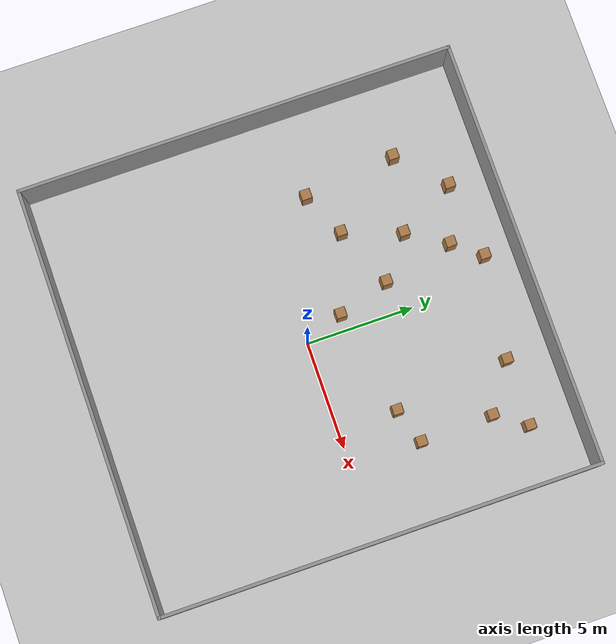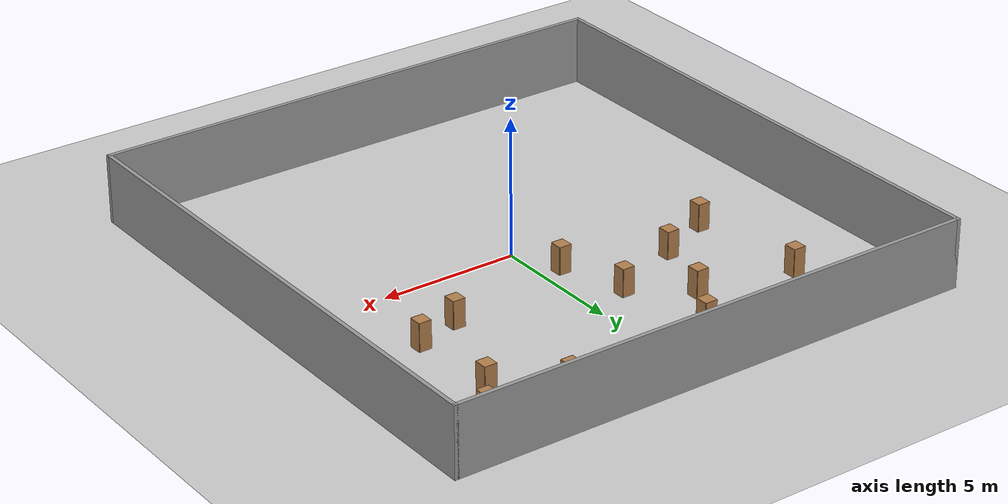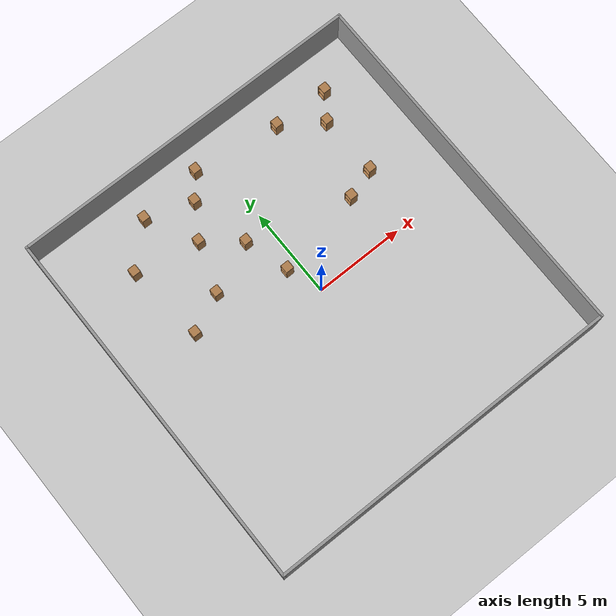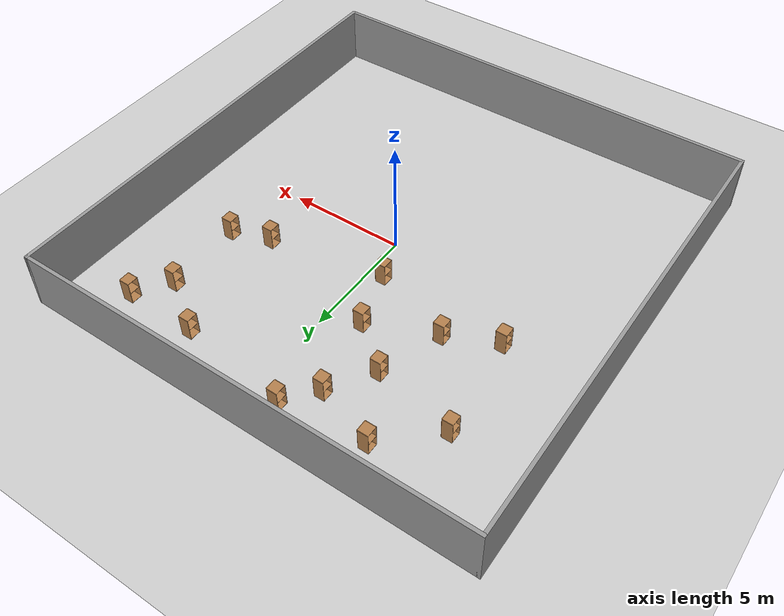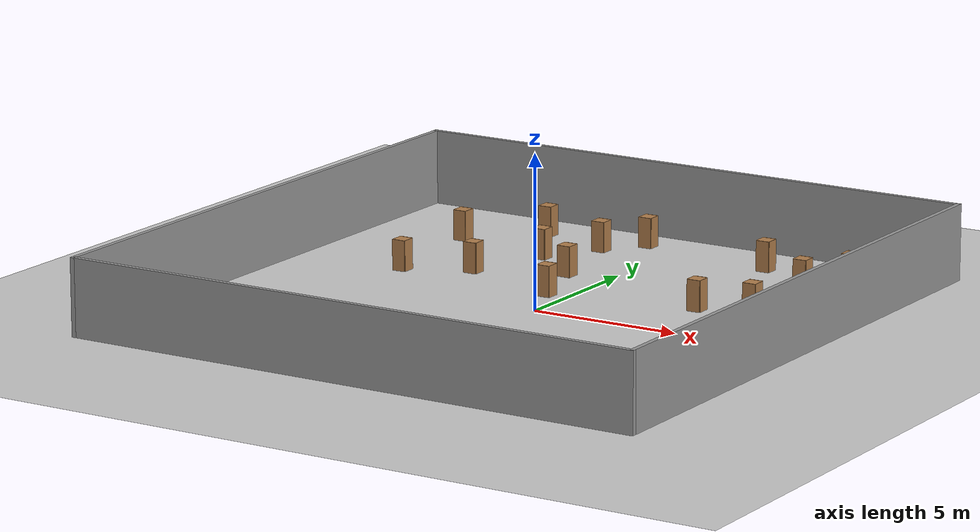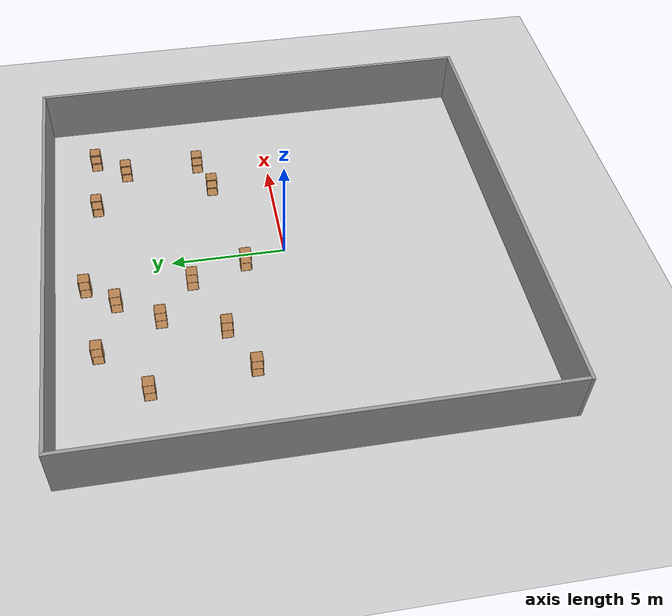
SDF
<sdf version="1.6">
 <world name="default">
  <model name="ground_plane">
   <static>1</static>
   <link name="link">
    <collision name="collision">
     <geometry><plane><normal>0 0 1</normal><size>100 100</size></plane></geometry>
     <surface><friction><ode><mu>100</mu><mu2>50</mu2></ode></friction></surface>
    </collision>
    <visual name="visual">
     <cast_shadows>0</cast_shadows>
     <geometry><plane><normal>0 0 1</normal><size>100 100</size></plane></geometry>
     <material>
      <script><uri>file://media/materials/scripts/gazebo.material</uri><name>Gazebo/Grey</name></script>
     </material>
    </visual>
   </link>
  </model>
  <model name="room">
   <pose>-0.435747 0.13788 0 0 -0 0</pose>
   <link name="Wall_0">
    <collision name="Wall_0_Collision">
     <geometry><box><size>19.75 0.15 2.5</size></box></geometry>
     <pose>0 0 1.25 0 -0 0</pose>
    </collision>
    <visual name="Wall_0_Visual">
     <pose>0 0 1.25 0 -0 0</pose>
     <geometry><box><size>19.75 0.15 2.5</size></box></geometry>
     <material>
      <script><uri>file://media/materials/scripts/gazebo.material</uri><name>Gazebo/Grey</name></script>
      <ambient>1 1 1 1</ambient>
     </material>
     <meta><layer>0</layer></meta>
    </visual>
    <pose>-0 -10.05 0 0 -0 3.14159</pose>
   </link>
   <link name="Wall_2">
    <collision name="Wall_2_Collision">
     <geometry><box><size>20.25 0.15 2.5</size></box></geometry>
     <pose>0 0 1.25 0 -0 0</pose>
    </collision>
    <visual name="Wall_2_Visual">
     <pose>0 0 1.25 0 -0 0</pose>
     <geometry><box><size>20.25 0.15 2.5</size></box></geometry>
     <material>
      <script><uri>file://media/materials/scripts/gazebo.material</uri><name>Gazebo/Grey</name></script>
      <ambient>1 1 1 1</ambient>
     </material>
     <meta><layer>0</layer></meta>
    </visual>
    <pose>-9.8 0 0 0 -0 1.5708</pose>
   </link>
   <link name="Wall_3">
    <collision name="Wall_3_Collision">
     <geometry><box><size>19.75 0.15 2.5</size></box></geometry>
     <pose>0 0 1.25 0 -0 0</pose>
    </collision>
    <visual name="Wall_3_Visual">
     <pose>0 0 1.25 0 -0 0</pose>
     <geometry><box><size>19.75 0.15 2.5</size></box></geometry>
     <material>
      <script><uri>file://media/materials/scripts/gazebo.material</uri><name>Gazebo/Grey</name></script>
      <ambient>1 1 1 1</ambient>
     </material>
     <meta><layer>0</layer></meta>
    </visual>
    <pose>-0 10.05 0 0 -0 0</pose>
   </link>
   <link name="Wall_4">
    <collision name="Wall_4_Collision">
     <geometry><box><size>20.25 0.15 2.5</size></box></geometry>
     <pose>0 0 1.25 0 -0 0</pose>
    </collision>
    <visual name="Wall_4_Visual">
     <pose>0 0 1.25 0 -0 0</pose>
     <geometry><box><size>20.25 0.15 2.5</size></box></geometry>
     <material>
      <script><uri>file://media/materials/scripts/gazebo.material</uri><name>Gazebo/Grey</name></script>
      <ambient>1 1 1 1</ambient>
     </material>
     <meta><layer>0</layer></meta>
    </visual>
    <pose>9.8 0 0 0 -0 -1.5708</pose>
   </link>
   <static>1</static>
  </model>
  <model name="cabinet">
   <static>1</static>
   <link name="cabinet_bottom_plate">
    <inertial>
     <pose>0 0 -1 0 -0 0</pose>
     <inertia><ixx>2.05</ixx><ixy>0</ixy><ixz>0</ixz><iyy>2.05</iyy><iyz>0</iyz><izz>2.05</izz></inertia>
     <mass>25</mass>
    </inertial>
    <collision name="cabinet_bottom_plate_geom">
     <pose>0 0 0.01 0 -0 0</pose>
     <geometry><box><size>0.45 0.45 0.02</size></box></geometry>
    </collision>
    <visual name="cabinet_bottom_plate_geom_visual">
     <pose>0 0 0.01 0 -0 0</pose>
     <geometry><box><size>0.45 0.45 0.02</size></box></geometry>
     <material>
      <script><uri>file://media/materials/scripts/gazebo.material</uri><name>Gazebo/Wood</name></script>
     </material>
    </visual>
    <collision name="cabinet_bottom_plate_geom_cabinet_back_plate">
     <pose>0.235 0 0.51 0 -0 0</pose>
     <geometry><box><size>0.02 0.45 1.02</size></box></geometry>
    </collision>
    <visual name="cabinet_bottom_plate_geom_cabinet_back_plate_visual">
     <pose>0.235 0 0.51 0 -0 0</pose>
     <geometry><box><size>0.02 0.45 1.02</size></box></geometry>
     <material>
      <script><uri>file://media/materials/scripts/gazebo.material</uri><name>Gazebo/Wood</name></script>
     </material>
    </visual>
    <collision name="cabinet_bottom_plate_geom_cabinet_left_plate">
     <pose>0 0.235 0.51 0 -0 0</pose>
     <geometry><box><size>0.45 0.02 1.02</size></box></geometry>
    </collision>
    <visual name="cabinet_bottom_plate_geom_cabinet_left_plate_visual">
     <pose>0 0.235 0.51 0 -0 0</pose>
     <geometry><box><size>0.45 0.02 1.02</size></box></geometry>
     <material>
      <script><uri>file://media/materials/scripts/gazebo.material</uri><name>Gazebo/Wood</name></script>
     </material>
    </visual>
    <collision name="cabinet_bottom_plate_geom_cabinet_middle_plate">
     <pose>0 0 0.51 0 -0 0</pose>
     <geometry><box><size>0.45 0.45 0.02</size></box></geometry>
    </collision>
    <visual name="cabinet_bottom_plate_geom_cabinet_middle_plate_visual">
     <pose>0 0 0.51 0 -0 0</pose>
     <geometry><box><size>0.45 0.45 0.02</size></box></geometry>
     <material>
      <script><uri>file://media/materials/scripts/gazebo.material</uri><name>Gazebo/Wood</name></script>
     </material>
    </visual>
    <collision name="cabinet_bottom_plate_geom_cabinet_right_plate">
     <pose>0 -0.235 0.51 0 -0 0</pose>
     <geometry><box><size>0.45 0.02 1.02</size></box></geometry>
    </collision>
    <visual name="cabinet_bottom_plate_geom_cabinet_right_plate_visual">
     <pose>0 -0.235 0.51 0 -0 0</pose>
     <geometry><box><size>0.45 0.02 1.02</size></box></geometry>
     <material>
      <script><uri>file://media/materials/scripts/gazebo.material</uri><name>Gazebo/Wood</name></script>
     </material>
    </visual>
    <collision name="cabinet_bottom_plate_geom_cabinet_top_plate">
     <pose>0 0 1.01 0 -0 0</pose>
     <geometry><box><size>0.45 0.45 0.02</size></box></geometry>
    </collision>
    <visual name="cabinet_bottom_plate_geom_cabinet_top_plate_visual">
     <pose>0 0 1.01 0 -0 0</pose>
     <geometry><box><size>0.45 0.45 0.02</size></box></geometry>
     <material>
      <script><uri>file://media/materials/scripts/gazebo.material</uri><name>Gazebo/Wood</name></script>
     </material>
    </visual>
   </link>
   <pose>6.71226 8.05087 0 0 -0 0</pose>
  </model>
  <model name="cabinet_0">
   <static>1</static>
   <link name="cabinet_bottom_plate">
    <inertial>
     <pose>0 0 -1 0 -0 0</pose>
     <inertia><ixx>2.05</ixx><ixy>0</ixy><ixz>0</ixz><iyy>2.05</iyy><iyz>0</iyz><izz>2.05</izz></inertia>
     <mass>25</mass>
    </inertial>
    <collision name="cabinet_bottom_plate_geom">
     <pose>0 0 0.01 0 -0 0</pose>
     <geometry><box><size>0.45 0.45 0.02</size></box></geometry>
    </collision>
    <visual name="cabinet_bottom_plate_geom_visual">
     <pose>0 0 0.01 0 -0 0</pose>
     <geometry><box><size>0.45 0.45 0.02</size></box></geometry>
     <material>
      <script><uri>file://media/materials/scripts/gazebo.material</uri><name>Gazebo/Wood</name></script>
     </material>
    </visual>
    <collision name="cabinet_bottom_plate_geom_cabinet_back_plate">
     <pose>0.235 0 0.51 0 -0 0</pose>
     <geometry><box><size>0.02 0.45 1.02</size></box></geometry>
    </collision>
    <visual name="cabinet_bottom_plate_geom_cabinet_back_plate_visual">
     <pose>0.235 0 0.51 0 -0 0</pose>
     <geometry><box><size>0.02 0.45 1.02</size></box></geometry>
     <material>
      <script><uri>file://media/materials/scripts/gazebo.material</uri><name>Gazebo/Wood</name></script>
     </material>
    </visual>
    <collision name="cabinet_bottom_plate_geom_cabinet_left_plate">
     <pose>0 0.235 0.51 0 -0 0</pose>
     <geometry><box><size>0.45 0.02 1.02</size></box></geometry>
    </collision>
    <visual name="cabinet_bottom_plate_geom_cabinet_left_plate_visual">
     <pose>0 0.235 0.51 0 -0 0</pose>
     <geometry><box><size>0.45 0.02 1.02</size></box></geometry>
     <material>
      <script><uri>file://media/materials/scripts/gazebo.material</uri><name>Gazebo/Wood</name></script>
     </material>
    </visual>
    <collision name="cabinet_bottom_plate_geom_cabinet_middle_plate">
     <pose>0 0 0.51 0 -0 0</pose>
     <geometry><box><size>0.45 0.45 0.02</size></box></geometry>
    </collision>
    <visual name="cabinet_bottom_plate_geom_cabinet_middle_plate_visual">
     <pose>0 0 0.51 0 -0 0</pose>
     <geometry><box><size>0.45 0.45 0.02</size></box></geometry>
     <material>
      <script><uri>file://media/materials/scripts/gazebo.material</uri><name>Gazebo/Wood</name></script>
     </material>
    </visual>
    <collision name="cabinet_bottom_plate_geom_cabinet_right_plate">
     <pose>0 -0.235 0.51 0 -0 0</pose>
     <geometry><box><size>0.45 0.02 1.02</size></box></geometry>
    </collision>
    <visual name="cabinet_bottom_plate_geom_cabinet_right_plate_visual">
     <pose>0 -0.235 0.51 0 -0 0</pose>
     <geometry><box><size>0.45 0.02 1.02</size></box></geometry>
     <material>
      <script><uri>file://media/materials/scripts/gazebo.material</uri><name>Gazebo/Wood</name></script>
     </material>
    </visual>
    <collision name="cabinet_bottom_plate_geom_cabinet_top_plate">
     <pose>0 0 1.01 0 -0 0</pose>
     <geometry><box><size>0.45 0.45 0.02</size></box></geometry>
    </collision>
    <visual name="cabinet_bottom_plate_geom_cabinet_top_plate_visual">
     <pose>0 0 1.01 0 -0 0</pose>
     <geometry><box><size>0.45 0.45 0.02</size></box></geometry>
     <material>
      <script><uri>file://media/materials/scripts/gazebo.material</uri><name>Gazebo/Wood</name></script>
     </material>
    </visual>
   </link>
   <pose>5.74581 6.66166 0 0 -0 0</pose>
  </model>
  <model name="cabinet_1">
   <static>1</static>
   <link name="cabinet_bottom_plate">
    <inertial>
     <pose>0 0 -1 0 -0 0</pose>
     <inertia><ixx>2.05</ixx><ixy>0</ixy><ixz>0</ixz><iyy>2.05</iyy><iyz>0</iyz><izz>2.05</izz></inertia>
     <mass>25</mass>
    </inertial>
    <collision name="cabinet_bottom_plate_geom">
     <pose>0 0 0.01 0 -0 0</pose>
     <geometry><box><size>0.45 0.45 0.02</size></box></geometry>
    </collision>
    <visual name="cabinet_bottom_plate_geom_visual">
     <pose>0 0 0.01 0 -0 0</pose>
     <geometry><box><size>0.45 0.45 0.02</size></box></geometry>
     <material>
      <script><uri>file://media/materials/scripts/gazebo.material</uri><name>Gazebo/Wood</name></script>
     </material>
    </visual>
    <collision name="cabinet_bottom_plate_geom_cabinet_back_plate">
     <pose>0.235 0 0.51 0 -0 0</pose>
     <geometry><box><size>0.02 0.45 1.02</size></box></geometry>
    </collision>
    <visual name="cabinet_bottom_plate_geom_cabinet_back_plate_visual">
     <pose>0.235 0 0.51 0 -0 0</pose>
     <geometry><box><size>0.02 0.45 1.02</size></box></geometry>
     <material>
      <script><uri>file://media/materials/scripts/gazebo.material</uri><name>Gazebo/Wood</name></script>
     </material>
    </visual>
    <collision name="cabinet_bottom_plate_geom_cabinet_left_plate">
     <pose>0 0.235 0.51 0 -0 0</pose>
     <geometry><box><size>0.45 0.02 1.02</size></box></geometry>
    </collision>
    <visual name="cabinet_bottom_plate_geom_cabinet_left_plate_visual">
     <pose>0 0.235 0.51 0 -0 0</pose>
     <geometry><box><size>0.45 0.02 1.02</size></box></geometry>
     <material>
      <script><uri>file://media/materials/scripts/gazebo.material</uri><name>Gazebo/Wood</name></script>
     </material>
    </visual>
    <collision name="cabinet_bottom_plate_geom_cabinet_middle_plate">
     <pose>0 0 0.51 0 -0 0</pose>
     <geometry><box><size>0.45 0.45 0.02</size></box></geometry>
    </collision>
    <visual name="cabinet_bottom_plate_geom_cabinet_middle_plate_visual">
     <pose>0 0 0.51 0 -0 0</pose>
     <geometry><box><size>0.45 0.45 0.02</size></box></geometry>
     <material>
      <script><uri>file://media/materials/scripts/gazebo.material</uri><name>Gazebo/Wood</name></script>
     </material>
    </visual>
    <collision name="cabinet_bottom_plate_geom_cabinet_right_plate">
     <pose>0 -0.235 0.51 0 -0 0</pose>
     <geometry><box><size>0.45 0.02 1.02</size></box></geometry>
    </collision>
    <visual name="cabinet_bottom_plate_geom_cabinet_right_plate_visual">
     <pose>0 -0.235 0.51 0 -0 0</pose>
     <geometry><box><size>0.45 0.02 1.02</size></box></geometry>
     <material>
      <script><uri>file://media/materials/scripts/gazebo.material</uri><name>Gazebo/Wood</name></script>
     </material>
    </visual>
    <collision name="cabinet_bottom_plate_geom_cabinet_top_plate">
     <pose>0 0 1.01 0 -0 0</pose>
     <geometry><box><size>0.45 0.45 0.02</size></box></geometry>
    </collision>
    <visual name="cabinet_bottom_plate_geom_cabinet_top_plate_visual">
     <pose>0 0 1.01 0 -0 0</pose>
     <geometry><box><size>0.45 0.45 0.02</size></box></geometry>
     <material>
      <script><uri>file://media/materials/scripts/gazebo.material</uri><name>Gazebo/Wood</name></script>
     </material>
    </visual>
   </link>
   <pose>3.61983 8.1036 0 0 -0 0</pose>
  </model>
  <model name="cabinet_2">
   <static>1</static>
   <link name="cabinet_bottom_plate">
    <inertial>
     <pose>0 0 -1 0 -0 0</pose>
     <inertia><ixx>2.05</ixx><ixy>0</ixy><ixz>0</ixz><iyy>2.05</iyy><iyz>0</iyz><izz>2.05</izz></inertia>
     <mass>25</mass>
    </inertial>
    <collision name="cabinet_bottom_plate_geom">
     <pose>0 0 0.01 0 -0 0</pose>
     <geometry><box><size>0.45 0.45 0.02</size></box></geometry>
    </collision>
    <visual name="cabinet_bottom_plate_geom_visual">
     <pose>0 0 0.01 0 -0 0</pose>
     <geometry><box><size>0.45 0.45 0.02</size></box></geometry>
     <material>
      <script><uri>file://media/materials/scripts/gazebo.material</uri><name>Gazebo/Wood</name></script>
     </material>
    </visual>
    <collision name="cabinet_bottom_plate_geom_cabinet_back_plate">
     <pose>0.235 0 0.51 0 -0 0</pose>
     <geometry><box><size>0.02 0.45 1.02</size></box></geometry>
    </collision>
    <visual name="cabinet_bottom_plate_geom_cabinet_back_plate_visual">
     <pose>0.235 0 0.51 0 -0 0</pose>
     <geometry><box><size>0.02 0.45 1.02</size></box></geometry>
     <material>
      <script><uri>file://media/materials/scripts/gazebo.material</uri><name>Gazebo/Wood</name></script>
     </material>
    </visual>
    <collision name="cabinet_bottom_plate_geom_cabinet_left_plate">
     <pose>0 0.235 0.51 0 -0 0</pose>
     <geometry><box><size>0.45 0.02 1.02</size></box></geometry>
    </collision>
    <visual name="cabinet_bottom_plate_geom_cabinet_left_plate_visual">
     <pose>0 0.235 0.51 0 -0 0</pose>
     <geometry><box><size>0.45 0.02 1.02</size></box></geometry>
     <material>
      <script><uri>file://media/materials/scripts/gazebo.material</uri><name>Gazebo/Wood</name></script>
     </material>
    </visual>
    <collision name="cabinet_bottom_plate_geom_cabinet_middle_plate">
     <pose>0 0 0.51 0 -0 0</pose>
     <geometry><box><size>0.45 0.45 0.02</size></box></geometry>
    </collision>
    <visual name="cabinet_bottom_plate_geom_cabinet_middle_plate_visual">
     <pose>0 0 0.51 0 -0 0</pose>
     <geometry><box><size>0.45 0.45 0.02</size></box></geometry>
     <material>
      <script><uri>file://media/materials/scripts/gazebo.material</uri><name>Gazebo/Wood</name></script>
     </material>
    </visual>
    <collision name="cabinet_bottom_plate_geom_cabinet_right_plate">
     <pose>0 -0.235 0.51 0 -0 0</pose>
     <geometry><box><size>0.45 0.02 1.02</size></box></geometry>
    </collision>
    <visual name="cabinet_bottom_plate_geom_cabinet_right_plate_visual">
     <pose>0 -0.235 0.51 0 -0 0</pose>
     <geometry><box><size>0.45 0.02 1.02</size></box></geometry>
     <material>
      <script><uri>file://media/materials/scripts/gazebo.material</uri><name>Gazebo/Wood</name></script>
     </material>
    </visual>
    <collision name="cabinet_bottom_plate_geom_cabinet_top_plate">
     <pose>0 0 1.01 0 -0 0</pose>
     <geometry><box><size>0.45 0.45 0.02</size></box></geometry>
    </collision>
    <visual name="cabinet_bottom_plate_geom_cabinet_top_plate_visual">
     <pose>0 0 1.01 0 -0 0</pose>
     <geometry><box><size>0.45 0.45 0.02</size></box></geometry>
     <material>
      <script><uri>file://media/materials/scripts/gazebo.material</uri><name>Gazebo/Wood</name></script>
     </material>
    </visual>
   </link>
   <pose>5.83049 3.29027 0 0 -0 0</pose>
  </model>
  <model name="cabinet_7">
   <static>1</static>
   <link name="cabinet_bottom_plate">
    <inertial>
     <pose>0 0 -1 0 -0 0</pose>
     <inertia><ixx>2.05</ixx><ixy>0</ixy><ixz>0</ixz><iyy>2.05</iyy><iyz>0</iyz><izz>2.05</izz></inertia>
     <mass>25</mass>
    </inertial>
    <collision name="cabinet_bottom_plate_geom">
     <pose>0 0 0.01 0 -0 0</pose>
     <geometry><box><size>0.45 0.45 0.02</size></box></geometry>
    </collision>
    <visual name="cabinet_bottom_plate_geom_visual">
     <pose>0 0 0.01 0 -0 0</pose>
     <geometry><box><size>0.45 0.45 0.02</size></box></geometry>
     <material>
      <script><uri>file://media/materials/scripts/gazebo.material</uri><name>Gazebo/Wood</name></script>
     </material>
    </visual>
    <collision name="cabinet_bottom_plate_geom_cabinet_back_plate">
     <pose>0.235 0 0.51 0 -0 0</pose>
     <geometry><box><size>0.02 0.45 1.02</size></box></geometry>
    </collision>
    <visual name="cabinet_bottom_plate_geom_cabinet_back_plate_visual">
     <pose>0.235 0 0.51 0 -0 0</pose>
     <geometry><box><size>0.02 0.45 1.02</size></box></geometry>
     <material>
      <script><uri>file://media/materials/scripts/gazebo.material</uri><name>Gazebo/Wood</name></script>
     </material>
    </visual>
    <collision name="cabinet_bottom_plate_geom_cabinet_left_plate">
     <pose>0 0.235 0.51 0 -0 0</pose>
     <geometry><box><size>0.45 0.02 1.02</size></box></geometry>
    </collision>
    <visual name="cabinet_bottom_plate_geom_cabinet_left_plate_visual">
     <pose>0 0.235 0.51 0 -0 0</pose>
     <geometry><box><size>0.45 0.02 1.02</size></box></geometry>
     <material>
      <script><uri>file://media/materials/scripts/gazebo.material</uri><name>Gazebo/Wood</name></script>
     </material>
    </visual>
    <collision name="cabinet_bottom_plate_geom_cabinet_middle_plate">
     <pose>0 0 0.51 0 -0 0</pose>
     <geometry><box><size>0.45 0.45 0.02</size></box></geometry>
    </collision>
    <visual name="cabinet_bottom_plate_geom_cabinet_middle_plate_visual">
     <pose>0 0 0.51 0 -0 0</pose>
     <geometry><box><size>0.45 0.45 0.02</size></box></geometry>
     <material>
      <script><uri>file://media/materials/scripts/gazebo.material</uri><name>Gazebo/Wood</name></script>
     </material>
    </visual>
    <collision name="cabinet_bottom_plate_geom_cabinet_right_plate">
     <pose>0 -0.235 0.51 0 -0 0</pose>
     <geometry><box><size>0.45 0.02 1.02</size></box></geometry>
    </collision>
    <visual name="cabinet_bottom_plate_geom_cabinet_right_plate_visual">
     <pose>0 -0.235 0.51 0 -0 0</pose>
     <geometry><box><size>0.45 0.02 1.02</size></box></geometry>
     <material>
      <script><uri>file://media/materials/scripts/gazebo.material</uri><name>Gazebo/Wood</name></script>
     </material>
    </visual>
    <collision name="cabinet_bottom_plate_geom_cabinet_top_plate">
     <pose>0 0 1.01 0 -0 0</pose>
     <geometry><box><size>0.45 0.45 0.02</size></box></geometry>
    </collision>
    <visual name="cabinet_bottom_plate_geom_cabinet_top_plate_visual">
     <pose>0 0 1.01 0 -0 0</pose>
     <geometry><box><size>0.45 0.45 0.02</size></box></geometry>
     <material>
      <script><uri>file://media/materials/scripts/gazebo.material</uri><name>Gazebo/Wood</name></script>
     </material>
    </visual>
   </link>
   <pose>4.17053 2.75304 0 0 -0 0</pose>
  </model>
  <model name="cabinet_9">
   <static>1</static>
   <link name="cabinet_bottom_plate">
    <inertial>
     <pose>0 0 -1 0 -0 0</pose>
     <inertia><ixx>2.05</ixx><ixy>0</ixy><ixz>0</ixz><iyy>2.05</iyy><iyz>0</iyz><izz>2.05</izz></inertia>
     <mass>25</mass>
    </inertial>
    <collision name="cabinet_bottom_plate_geom">
     <pose>0 0 0.01 0 -0 0</pose>
     <geometry><box><size>0.45 0.45 0.02</size></box></geometry>
    </collision>
    <visual name="cabinet_bottom_plate_geom_visual">
     <pose>0 0 0.01 0 -0 0</pose>
     <geometry><box><size>0.45 0.45 0.02</size></box></geometry>
     <material>
      <script><uri>file://media/materials/scripts/gazebo.material</uri><name>Gazebo/Wood</name></script>
     </material>
    </visual>
    <collision name="cabinet_bottom_plate_geom_cabinet_back_plate">
     <pose>0.235 0 0.51 0 -0 0</pose>
     <geometry><box><size>0.02 0.45 1.02</size></box></geometry>
    </collision>
    <visual name="cabinet_bottom_plate_geom_cabinet_back_plate_visual">
     <pose>0.235 0 0.51 0 -0 0</pose>
     <geometry><box><size>0.02 0.45 1.02</size></box></geometry>
     <material>
      <script><uri>file://media/materials/scripts/gazebo.material</uri><name>Gazebo/Wood</name></script>
     </material>
    </visual>
    <collision name="cabinet_bottom_plate_geom_cabinet_left_plate">
     <pose>0 0.235 0.51 0 -0 0</pose>
     <geometry><box><size>0.45 0.02 1.02</size></box></geometry>
    </collision>
    <visual name="cabinet_bottom_plate_geom_cabinet_left_plate_visual">
     <pose>0 0.235 0.51 0 -0 0</pose>
     <geometry><box><size>0.45 0.02 1.02</size></box></geometry>
     <material>
      <script><uri>file://media/materials/scripts/gazebo.material</uri><name>Gazebo/Wood</name></script>
     </material>
    </visual>
    <collision name="cabinet_bottom_plate_geom_cabinet_middle_plate">
     <pose>0 0 0.51 0 -0 0</pose>
     <geometry><box><size>0.45 0.45 0.02</size></box></geometry>
    </collision>
    <visual name="cabinet_bottom_plate_geom_cabinet_middle_plate_visual">
     <pose>0 0 0.51 0 -0 0</pose>
     <geometry><box><size>0.45 0.45 0.02</size></box></geometry>
     <material>
      <script><uri>file://media/materials/scripts/gazebo.material</uri><name>Gazebo/Wood</name></script>
     </material>
    </visual>
    <collision name="cabinet_bottom_plate_geom_cabinet_right_plate">
     <pose>0 -0.235 0.51 0 -0 0</pose>
     <geometry><box><size>0.45 0.02 1.02</size></box></geometry>
    </collision>
    <visual name="cabinet_bottom_plate_geom_cabinet_right_plate_visual">
     <pose>0 -0.235 0.51 0 -0 0</pose>
     <geometry><box><size>0.45 0.02 1.02</size></box></geometry>
     <material>
      <script><uri>file://media/materials/scripts/gazebo.material</uri><name>Gazebo/Wood</name></script>
     </material>
    </visual>
    <collision name="cabinet_bottom_plate_geom_cabinet_top_plate">
     <pose>0 0 1.01 0 -0 0</pose>
     <geometry><box><size>0.45 0.45 0.02</size></box></geometry>
    </collision>
    <visual name="cabinet_bottom_plate_geom_cabinet_top_plate_visual">
     <pose>0 0 1.01 0 -0 0</pose>
     <geometry><box><size>0.45 0.45 0.02</size></box></geometry>
     <material>
      <script><uri>file://media/materials/scripts/gazebo.material</uri><name>Gazebo/Wood</name></script>
     </material>
    </visual>
   </link>
   <pose>-1.12707 8.77513 0 0 -0 0</pose>
  </model>
  <model name="cabinet_10">
   <static>1</static>
   <link name="cabinet_bottom_plate">
    <inertial>
     <pose>0 0 -1 0 -0 0</pose>
     <inertia><ixx>2.05</ixx><ixy>0</ixy><ixz>0</ixz><iyy>2.05</iyy><iyz>0</iyz><izz>2.05</izz></inertia>
     <mass>25</mass>
    </inertial>
    <collision name="cabinet_bottom_plate_geom">
     <pose>0 0 0.01 0 -0 0</pose>
     <geometry><box><size>0.45 0.45 0.02</size></box></geometry>
    </collision>
    <visual name="cabinet_bottom_plate_geom_visual">
     <pose>0 0 0.01 0 -0 0</pose>
     <geometry><box><size>0.45 0.45 0.02</size></box></geometry>
     <material>
      <script><uri>file://media/materials/scripts/gazebo.material</uri><name>Gazebo/Wood</name></script>
     </material>
    </visual>
    <collision name="cabinet_bottom_plate_geom_cabinet_back_plate">
     <pose>0.235 0 0.51 0 -0 0</pose>
     <geometry><box><size>0.02 0.45 1.02</size></box></geometry>
    </collision>
    <visual name="cabinet_bottom_plate_geom_cabinet_back_plate_visual">
     <pose>0.235 0 0.51 0 -0 0</pose>
     <geometry><box><size>0.02 0.45 1.02</size></box></geometry>
     <material>
      <script><uri>file://media/materials/scripts/gazebo.material</uri><name>Gazebo/Wood</name></script>
     </material>
    </visual>
    <collision name="cabinet_bottom_plate_geom_cabinet_left_plate">
     <pose>0 0.235 0.51 0 -0 0</pose>
     <geometry><box><size>0.45 0.02 1.02</size></box></geometry>
    </collision>
    <visual name="cabinet_bottom_plate_geom_cabinet_left_plate_visual">
     <pose>0 0.235 0.51 0 -0 0</pose>
     <geometry><box><size>0.45 0.02 1.02</size></box></geometry>
     <material>
      <script><uri>file://media/materials/scripts/gazebo.material</uri><name>Gazebo/Wood</name></script>
     </material>
    </visual>
    <collision name="cabinet_bottom_plate_geom_cabinet_middle_plate">
     <pose>0 0 0.51 0 -0 0</pose>
     <geometry><box><size>0.45 0.45 0.02</size></box></geometry>
    </collision>
    <visual name="cabinet_bottom_plate_geom_cabinet_middle_plate_visual">
     <pose>0 0 0.51 0 -0 0</pose>
     <geometry><box><size>0.45 0.45 0.02</size></box></geometry>
     <material>
      <script><uri>file://media/materials/scripts/gazebo.material</uri><name>Gazebo/Wood</name></script>
     </material>
    </visual>
    <collision name="cabinet_bottom_plate_geom_cabinet_right_plate">
     <pose>0 -0.235 0.51 0 -0 0</pose>
     <geometry><box><size>0.45 0.02 1.02</size></box></geometry>
    </collision>
    <visual name="cabinet_bottom_plate_geom_cabinet_right_plate_visual">
     <pose>0 -0.235 0.51 0 -0 0</pose>
     <geometry><box><size>0.45 0.02 1.02</size></box></geometry>
     <material>
      <script><uri>file://media/materials/scripts/gazebo.material</uri><name>Gazebo/Wood</name></script>
     </material>
    </visual>
    <collision name="cabinet_bottom_plate_geom_cabinet_top_plate">
     <pose>0 0 1.01 0 -0 0</pose>
     <geometry><box><size>0.45 0.45 0.02</size></box></geometry>
    </collision>
    <visual name="cabinet_bottom_plate_geom_cabinet_top_plate_visual">
     <pose>0 0 1.01 0 -0 0</pose>
     <geometry><box><size>0.45 0.45 0.02</size></box></geometry>
     <material>
      <script><uri>file://media/materials/scripts/gazebo.material</uri><name>Gazebo/Wood</name></script>
     </material>
    </visual>
   </link>
   <pose>-2.14834 7.51107 0 0 -0 0</pose>
  </model>
  <model name="cabinet_11">
   <static>1</static>
   <link name="cabinet_bottom_plate">
    <inertial>
     <pose>0 0 -1 0 -0 0</pose>
     <inertia><ixx>2.05</ixx><ixy>0</ixy><ixz>0</ixz><iyy>2.05</iyy><iyz>0</iyz><izz>2.05</izz></inertia>
     <mass>25</mass>
    </inertial>
    <collision name="cabinet_bottom_plate_geom">
     <pose>0 0 0.01 0 -0 0</pose>
     <geometry><box><size>0.45 0.45 0.02</size></box></geometry>
    </collision>
    <visual name="cabinet_bottom_plate_geom_visual">
     <pose>0 0 0.01 0 -0 0</pose>
     <geometry><box><size>0.45 0.45 0.02</size></box></geometry>
     <material>
      <script><uri>file://media/materials/scripts/gazebo.material</uri><name>Gazebo/Wood</name></script>
     </material>
    </visual>
    <collision name="cabinet_bottom_plate_geom_cabinet_back_plate">
     <pose>0.235 0 0.51 0 -0 0</pose>
     <geometry><box><size>0.02 0.45 1.02</size></box></geometry>
    </collision>
    <visual name="cabinet_bottom_plate_geom_cabinet_back_plate_visual">
     <pose>0.235 0 0.51 0 -0 0</pose>
     <geometry><box><size>0.02 0.45 1.02</size></box></geometry>
     <material>
      <script><uri>file://media/materials/scripts/gazebo.material</uri><name>Gazebo/Wood</name></script>
     </material>
    </visual>
    <collision name="cabinet_bottom_plate_geom_cabinet_left_plate">
     <pose>0 0.235 0.51 0 -0 0</pose>
     <geometry><box><size>0.45 0.02 1.02</size></box></geometry>
    </collision>
    <visual name="cabinet_bottom_plate_geom_cabinet_left_plate_visual">
     <pose>0 0.235 0.51 0 -0 0</pose>
     <geometry><box><size>0.45 0.02 1.02</size></box></geometry>
     <material>
      <script><uri>file://media/materials/scripts/gazebo.material</uri><name>Gazebo/Wood</name></script>
     </material>
    </visual>
    <collision name="cabinet_bottom_plate_geom_cabinet_middle_plate">
     <pose>0 0 0.51 0 -0 0</pose>
     <geometry><box><size>0.45 0.45 0.02</size></box></geometry>
    </collision>
    <visual name="cabinet_bottom_plate_geom_cabinet_middle_plate_visual">
     <pose>0 0 0.51 0 -0 0</pose>
     <geometry><box><size>0.45 0.45 0.02</size></box></geometry>
     <material>
      <script><uri>file://media/materials/scripts/gazebo.material</uri><name>Gazebo/Wood</name></script>
     </material>
    </visual>
    <collision name="cabinet_bottom_plate_geom_cabinet_right_plate">
     <pose>0 -0.235 0.51 0 -0 0</pose>
     <geometry><box><size>0.45 0.02 1.02</size></box></geometry>
    </collision>
    <visual name="cabinet_bottom_plate_geom_cabinet_right_plate_visual">
     <pose>0 -0.235 0.51 0 -0 0</pose>
     <geometry><box><size>0.45 0.02 1.02</size></box></geometry>
     <material>
      <script><uri>file://media/materials/scripts/gazebo.material</uri><name>Gazebo/Wood</name></script>
     </material>
    </visual>
    <collision name="cabinet_bottom_plate_geom_cabinet_top_plate">
     <pose>0 0 1.01 0 -0 0</pose>
     <geometry><box><size>0.45 0.45 0.02</size></box></geometry>
    </collision>
    <visual name="cabinet_bottom_plate_geom_cabinet_top_plate_visual">
     <pose>0 0 1.01 0 -0 0</pose>
     <geometry><box><size>0.45 0.45 0.02</size></box></geometry>
     <material>
      <script><uri>file://media/materials/scripts/gazebo.material</uri><name>Gazebo/Wood</name></script>
     </material>
    </visual>
   </link>
   <pose>-3.28339 5.70512 0 0 -0 0</pose>
  </model>
  <model name="cabinet_12">
   <static>1</static>
   <link name="cabinet_bottom_plate">
    <inertial>
     <pose>0 0 -1 0 -0 0</pose>
     <inertia><ixx>2.05</ixx><ixy>0</ixy><ixz>0</ixz><iyy>2.05</iyy><iyz>0</iyz><izz>2.05</izz></inertia>
     <mass>25</mass>
    </inertial>
    <collision name="cabinet_bottom_plate_geom">
     <pose>0 0 0.01 0 -0 0</pose>
     <geometry><box><size>0.45 0.45 0.02</size></box></geometry>
    </collision>
    <visual name="cabinet_bottom_plate_geom_visual">
     <pose>0 0 0.01 0 -0 0</pose>
     <geometry><box><size>0.45 0.45 0.02</size></box></geometry>
     <material>
      <script><uri>file://media/materials/scripts/gazebo.material</uri><name>Gazebo/Wood</name></script>
     </material>
    </visual>
    <collision name="cabinet_bottom_plate_geom_cabinet_back_plate">
     <pose>0.235 0 0.51 0 -0 0</pose>
     <geometry><box><size>0.02 0.45 1.02</size></box></geometry>
    </collision>
    <visual name="cabinet_bottom_plate_geom_cabinet_back_plate_visual">
     <pose>0.235 0 0.51 0 -0 0</pose>
     <geometry><box><size>0.02 0.45 1.02</size></box></geometry>
     <material>
      <script><uri>file://media/materials/scripts/gazebo.material</uri><name>Gazebo/Wood</name></script>
     </material>
    </visual>
    <collision name="cabinet_bottom_plate_geom_cabinet_left_plate">
     <pose>0 0.235 0.51 0 -0 0</pose>
     <geometry><box><size>0.45 0.02 1.02</size></box></geometry>
    </collision>
    <visual name="cabinet_bottom_plate_geom_cabinet_left_plate_visual">
     <pose>0 0.235 0.51 0 -0 0</pose>
     <geometry><box><size>0.45 0.02 1.02</size></box></geometry>
     <material>
      <script><uri>file://media/materials/scripts/gazebo.material</uri><name>Gazebo/Wood</name></script>
     </material>
    </visual>
    <collision name="cabinet_bottom_plate_geom_cabinet_middle_plate">
     <pose>0 0 0.51 0 -0 0</pose>
     <geometry><box><size>0.45 0.45 0.02</size></box></geometry>
    </collision>
    <visual name="cabinet_bottom_plate_geom_cabinet_middle_plate_visual">
     <pose>0 0 0.51 0 -0 0</pose>
     <geometry><box><size>0.45 0.45 0.02</size></box></geometry>
     <material>
      <script><uri>file://media/materials/scripts/gazebo.material</uri><name>Gazebo/Wood</name></script>
     </material>
    </visual>
    <collision name="cabinet_bottom_plate_geom_cabinet_right_plate">
     <pose>0 -0.235 0.51 0 -0 0</pose>
     <geometry><box><size>0.45 0.02 1.02</size></box></geometry>
    </collision>
    <visual name="cabinet_bottom_plate_geom_cabinet_right_plate_visual">
     <pose>0 -0.235 0.51 0 -0 0</pose>
     <geometry><box><size>0.45 0.02 1.02</size></box></geometry>
     <material>
      <script><uri>file://media/materials/scripts/gazebo.material</uri><name>Gazebo/Wood</name></script>
     </material>
    </visual>
    <collision name="cabinet_bottom_plate_geom_cabinet_top_plate">
     <pose>0 0 1.01 0 -0 0</pose>
     <geometry><box><size>0.45 0.45 0.02</size></box></geometry>
    </collision>
    <visual name="cabinet_bottom_plate_geom_cabinet_top_plate_visual">
     <pose>0 0 1.01 0 -0 0</pose>
     <geometry><box><size>0.45 0.45 0.02</size></box></geometry>
     <material>
      <script><uri>file://media/materials/scripts/gazebo.material</uri><name>Gazebo/Wood</name></script>
     </material>
    </visual>
   </link>
   <pose>-1.43679 4.22181 0 0 -0 0</pose>
  </model>
  <model name="cabinet_13">
   <static>1</static>
   <link name="cabinet_bottom_plate">
    <inertial>
     <pose>0 0 -1 0 -0 0</pose>
     <inertia><ixx>2.05</ixx><ixy>0</ixy><ixz>0</ixz><iyy>2.05</iyy><iyz>0</iyz><izz>2.05</izz></inertia>
     <mass>25</mass>
    </inertial>
    <collision name="cabinet_bottom_plate_geom">
     <pose>0 0 0.01 0 -0 0</pose>
     <geometry><box><size>0.45 0.45 0.02</size></box></geometry>
    </collision>
    <visual name="cabinet_bottom_plate_geom_visual">
     <pose>0 0 0.01 0 -0 0</pose>
     <geometry><box><size>0.45 0.45 0.02</size></box></geometry>
     <material>
      <script><uri>file://media/materials/scripts/gazebo.material</uri><name>Gazebo/Wood</name></script>
     </material>
    </visual>
    <collision name="cabinet_bottom_plate_geom_cabinet_back_plate">
     <pose>0.235 0 0.51 0 -0 0</pose>
     <geometry><box><size>0.02 0.45 1.02</size></box></geometry>
    </collision>
    <visual name="cabinet_bottom_plate_geom_cabinet_back_plate_visual">
     <pose>0.235 0 0.51 0 -0 0</pose>
     <geometry><box><size>0.02 0.45 1.02</size></box></geometry>
     <material>
      <script><uri>file://media/materials/scripts/gazebo.material</uri><name>Gazebo/Wood</name></script>
     </material>
    </visual>
    <collision name="cabinet_bottom_plate_geom_cabinet_left_plate">
     <pose>0 0.235 0.51 0 -0 0</pose>
     <geometry><box><size>0.45 0.02 1.02</size></box></geometry>
    </collision>
    <visual name="cabinet_bottom_plate_geom_cabinet_left_plate_visual">
     <pose>0 0.235 0.51 0 -0 0</pose>
     <geometry><box><size>0.45 0.02 1.02</size></box></geometry>
     <material>
      <script><uri>file://media/materials/scripts/gazebo.material</uri><name>Gazebo/Wood</name></script>
     </material>
    </visual>
    <collision name="cabinet_bottom_plate_geom_cabinet_middle_plate">
     <pose>0 0 0.51 0 -0 0</pose>
     <geometry><box><size>0.45 0.45 0.02</size></box></geometry>
    </collision>
    <visual name="cabinet_bottom_plate_geom_cabinet_middle_plate_visual">
     <pose>0 0 0.51 0 -0 0</pose>
     <geometry><box><size>0.45 0.45 0.02</size></box></geometry>
     <material>
      <script><uri>file://media/materials/scripts/gazebo.material</uri><name>Gazebo/Wood</name></script>
     </material>
    </visual>
    <collision name="cabinet_bottom_plate_geom_cabinet_right_plate">
     <pose>0 -0.235 0.51 0 -0 0</pose>
     <geometry><box><size>0.45 0.02 1.02</size></box></geometry>
    </collision>
    <visual name="cabinet_bottom_plate_geom_cabinet_right_plate_visual">
     <pose>0 -0.235 0.51 0 -0 0</pose>
     <geometry><box><size>0.45 0.02 1.02</size></box></geometry>
     <material>
      <script><uri>file://media/materials/scripts/gazebo.material</uri><name>Gazebo/Wood</name></script>
     </material>
    </visual>
    <collision name="cabinet_bottom_plate_geom_cabinet_top_plate">
     <pose>0 0 1.01 0 -0 0</pose>
     <geometry><box><size>0.45 0.45 0.02</size></box></geometry>
    </collision>
    <visual name="cabinet_bottom_plate_geom_cabinet_top_plate_visual">
     <pose>0 0 1.01 0 -0 0</pose>
     <geometry><box><size>0.45 0.45 0.02</size></box></geometry>
     <material>
      <script><uri>file://media/materials/scripts/gazebo.material</uri><name>Gazebo/Wood</name></script>
     </material>
    </visual>
   </link>
   <pose>-0.707952 1.80997 0 0 -0 0</pose>
  </model>
  <model name="cabinet_14">
   <static>1</static>
   <link name="cabinet_bottom_plate">
    <inertial>
     <pose>0 0 -1 0 -0 0</pose>
     <inertia><ixx>2.05</ixx><ixy>0</ixy><ixz>0</ixz><iyy>2.05</iyy><iyz>0</iyz><izz>2.05</izz></inertia>
     <mass>25</mass>
    </inertial>
    <collision name="cabinet_bottom_plate_geom">
     <pose>0 0 0.01 0 -0 0</pose>
     <geometry><box><size>0.45 0.45 0.02</size></box></geometry>
    </collision>
    <visual name="cabinet_bottom_plate_geom_visual">
     <pose>0 0 0.01 0 -0 0</pose>
     <geometry><box><size>0.45 0.45 0.02</size></box></geometry>
     <material>
      <script><uri>file://media/materials/scripts/gazebo.material</uri><name>Gazebo/Wood</name></script>
     </material>
    </visual>
    <collision name="cabinet_bottom_plate_geom_cabinet_back_plate">
     <pose>0.235 0 0.51 0 -0 0</pose>
     <geometry><box><size>0.02 0.45 1.02</size></box></geometry>
    </collision>
    <visual name="cabinet_bottom_plate_geom_cabinet_back_plate_visual">
     <pose>0.235 0 0.51 0 -0 0</pose>
     <geometry><box><size>0.02 0.45 1.02</size></box></geometry>
     <material>
      <script><uri>file://media/materials/scripts/gazebo.material</uri><name>Gazebo/Wood</name></script>
     </material>
    </visual>
    <collision name="cabinet_bottom_plate_geom_cabinet_left_plate">
     <pose>0 0.235 0.51 0 -0 0</pose>
     <geometry><box><size>0.45 0.02 1.02</size></box></geometry>
    </collision>
    <visual name="cabinet_bottom_plate_geom_cabinet_left_plate_visual">
     <pose>0 0.235 0.51 0 -0 0</pose>
     <geometry><box><size>0.45 0.02 1.02</size></box></geometry>
     <material>
      <script><uri>file://media/materials/scripts/gazebo.material</uri><name>Gazebo/Wood</name></script>
     </material>
    </visual>
    <collision name="cabinet_bottom_plate_geom_cabinet_middle_plate">
     <pose>0 0 0.51 0 -0 0</pose>
     <geometry><box><size>0.45 0.45 0.02</size></box></geometry>
    </collision>
    <visual name="cabinet_bottom_plate_geom_cabinet_middle_plate_visual">
     <pose>0 0 0.51 0 -0 0</pose>
     <geometry><box><size>0.45 0.45 0.02</size></box></geometry>
     <material>
      <script><uri>file://media/materials/scripts/gazebo.material</uri><name>Gazebo/Wood</name></script>
     </material>
    </visual>
    <collision name="cabinet_bottom_plate_geom_cabinet_right_plate">
     <pose>0 -0.235 0.51 0 -0 0</pose>
     <geometry><box><size>0.45 0.02 1.02</size></box></geometry>
    </collision>
    <visual name="cabinet_bottom_plate_geom_cabinet_right_plate_visual">
     <pose>0 -0.235 0.51 0 -0 0</pose>
     <geometry><box><size>0.45 0.02 1.02</size></box></geometry>
     <material>
      <script><uri>file://media/materials/scripts/gazebo.material</uri><name>Gazebo/Wood</name></script>
     </material>
    </visual>
    <collision name="cabinet_bottom_plate_geom_cabinet_top_plate">
     <pose>0 0 1.01 0 -0 0</pose>
     <geometry><box><size>0.45 0.45 0.02</size></box></geometry>
    </collision>
    <visual name="cabinet_bottom_plate_geom_cabinet_top_plate_visual">
     <pose>0 0 1.01 0 -0 0</pose>
     <geometry><box><size>0.45 0.45 0.02</size></box></geometry>
     <material>
      <script><uri>file://media/materials/scripts/gazebo.material</uri><name>Gazebo/Wood</name></script>
     </material>
    </visual>
   </link>
   <pose>-4.69336 8.3697 0 0 -0 0</pose>
  </model>
  <model name="cabinet_15">
   <static>1</static>
   <link name="cabinet_bottom_plate">
    <inertial>
     <pose>0 0 -1 0 -0 0</pose>
     <inertia><ixx>2.05</ixx><ixy>0</ixy><ixz>0</ixz><iyy>2.05</iyy><iyz>0</iyz><izz>2.05</izz></inertia>
     <mass>25</mass>
    </inertial>
    <collision name="cabinet_bottom_plate_geom">
     <pose>0 0 0.01 0 -0 0</pose>
     <geometry><box><size>0.45 0.45 0.02</size></box></geometry>
    </collision>
    <visual name="cabinet_bottom_plate_geom_visual">
     <pose>0 0 0.01 0 -0 0</pose>
     <geometry><box><size>0.45 0.45 0.02</size></box></geometry>
     <material>
      <script><uri>file://media/materials/scripts/gazebo.material</uri><name>Gazebo/Wood</name></script>
     </material>
    </visual>
    <collision name="cabinet_bottom_plate_geom_cabinet_back_plate">
     <pose>0.235 0 0.51 0 -0 0</pose>
     <geometry><box><size>0.02 0.45 1.02</size></box></geometry>
    </collision>
    <visual name="cabinet_bottom_plate_geom_cabinet_back_plate_visual">
     <pose>0.235 0 0.51 0 -0 0</pose>
     <geometry><box><size>0.02 0.45 1.02</size></box></geometry>
     <material>
      <script><uri>file://media/materials/scripts/gazebo.material</uri><name>Gazebo/Wood</name></script>
     </material>
    </visual>
    <collision name="cabinet_bottom_plate_geom_cabinet_left_plate">
     <pose>0 0.235 0.51 0 -0 0</pose>
     <geometry><box><size>0.45 0.02 1.02</size></box></geometry>
    </collision>
    <visual name="cabinet_bottom_plate_geom_cabinet_left_plate_visual">
     <pose>0 0.235 0.51 0 -0 0</pose>
     <geometry><box><size>0.45 0.02 1.02</size></box></geometry>
     <material>
      <script><uri>file://media/materials/scripts/gazebo.material</uri><name>Gazebo/Wood</name></script>
     </material>
    </visual>
    <collision name="cabinet_bottom_plate_geom_cabinet_middle_plate">
     <pose>0 0 0.51 0 -0 0</pose>
     <geometry><box><size>0.45 0.45 0.02</size></box></geometry>
    </collision>
    <visual name="cabinet_bottom_plate_geom_cabinet_middle_plate_visual">
     <pose>0 0 0.51 0 -0 0</pose>
     <geometry><box><size>0.45 0.45 0.02</size></box></geometry>
     <material>
      <script><uri>file://media/materials/scripts/gazebo.material</uri><name>Gazebo/Wood</name></script>
     </material>
    </visual>
    <collision name="cabinet_bottom_plate_geom_cabinet_right_plate">
     <pose>0 -0.235 0.51 0 -0 0</pose>
     <geometry><box><size>0.45 0.02 1.02</size></box></geometry>
    </collision>
    <visual name="cabinet_bottom_plate_geom_cabinet_right_plate_visual">
     <pose>0 -0.235 0.51 0 -0 0</pose>
     <geometry><box><size>0.45 0.02 1.02</size></box></geometry>
     <material>
      <script><uri>file://media/materials/scripts/gazebo.material</uri><name>Gazebo/Wood</name></script>
     </material>
    </visual>
    <collision name="cabinet_bottom_plate_geom_cabinet_top_plate">
     <pose>0 0 1.01 0 -0 0</pose>
     <geometry><box><size>0.45 0.45 0.02</size></box></geometry>
    </collision>
    <visual name="cabinet_bottom_plate_geom_cabinet_top_plate_visual">
     <pose>0 0 1.01 0 -0 0</pose>
     <geometry><box><size>0.45 0.45 0.02</size></box></geometry>
     <material>
      <script><uri>file://media/materials/scripts/gazebo.material</uri><name>Gazebo/Wood</name></script>
     </material>
    </visual>
   </link>
   <pose>-6.76121 6.41336 0 0 -0 0</pose>
  </model>
  <model name="cabinet_16">
   <static>1</static>
   <link name="cabinet_bottom_plate">
    <inertial>
     <pose>0 0 -1 0 -0 0</pose>
     <inertia><ixx>2.05</ixx><ixy>0</ixy><ixz>0</ixz><iyy>2.05</iyy><iyz>0</iyz><izz>2.05</izz></inertia>
     <mass>25</mass>
    </inertial>
    <collision name="cabinet_bottom_plate_geom">
     <pose>0 0 0.01 0 -0 0</pose>
     <geometry><box><size>0.45 0.45 0.02</size></box></geometry>
    </collision>
    <visual name="cabinet_bottom_plate_geom_visual">
     <pose>0 0 0.01 0 -0 0</pose>
     <geometry><box><size>0.45 0.45 0.02</size></box></geometry>
     <material>
      <script><uri>file://media/materials/scripts/gazebo.material</uri><name>Gazebo/Wood</name></script>
     </material>
    </visual>
    <collision name="cabinet_bottom_plate_geom_cabinet_back_plate">
     <pose>0.235 0 0.51 0 -0 0</pose>
     <geometry><box><size>0.02 0.45 1.02</size></box></geometry>
    </collision>
    <visual name="cabinet_bottom_plate_geom_cabinet_back_plate_visual">
     <pose>0.235 0 0.51 0 -0 0</pose>
     <geometry><box><size>0.02 0.45 1.02</size></box></geometry>
     <material>
      <script><uri>file://media/materials/scripts/gazebo.material</uri><name>Gazebo/Wood</name></script>
     </material>
    </visual>
    <collision name="cabinet_bottom_plate_geom_cabinet_left_plate">
     <pose>0 0.235 0.51 0 -0 0</pose>
     <geometry><box><size>0.45 0.02 1.02</size></box></geometry>
    </collision>
    <visual name="cabinet_bottom_plate_geom_cabinet_left_plate_visual">
     <pose>0 0.235 0.51 0 -0 0</pose>
     <geometry><box><size>0.45 0.02 1.02</size></box></geometry>
     <material>
      <script><uri>file://media/materials/scripts/gazebo.material</uri><name>Gazebo/Wood</name></script>
     </material>
    </visual>
    <collision name="cabinet_bottom_plate_geom_cabinet_middle_plate">
     <pose>0 0 0.51 0 -0 0</pose>
     <geometry><box><size>0.45 0.45 0.02</size></box></geometry>
    </collision>
    <visual name="cabinet_bottom_plate_geom_cabinet_middle_plate_visual">
     <pose>0 0 0.51 0 -0 0</pose>
     <geometry><box><size>0.45 0.45 0.02</size></box></geometry>
     <material>
      <script><uri>file://media/materials/scripts/gazebo.material</uri><name>Gazebo/Wood</name></script>
     </material>
    </visual>
    <collision name="cabinet_bottom_plate_geom_cabinet_right_plate">
     <pose>0 -0.235 0.51 0 -0 0</pose>
     <geometry><box><size>0.45 0.02 1.02</size></box></geometry>
    </collision>
    <visual name="cabinet_bottom_plate_geom_cabinet_right_plate_visual">
     <pose>0 -0.235 0.51 0 -0 0</pose>
     <geometry><box><size>0.45 0.02 1.02</size></box></geometry>
     <material>
      <script><uri>file://media/materials/scripts/gazebo.material</uri><name>Gazebo/Wood</name></script>
     </material>
    </visual>
    <collision name="cabinet_bottom_plate_geom_cabinet_top_plate">
     <pose>0 0 1.01 0 -0 0</pose>
     <geometry><box><size>0.45 0.45 0.02</size></box></geometry>
    </collision>
    <visual name="cabinet_bottom_plate_geom_cabinet_top_plate_visual">
     <pose>0 0 1.01 0 -0 0</pose>
     <geometry><box><size>0.45 0.45 0.02</size></box></geometry>
     <material>
      <script><uri>file://media/materials/scripts/gazebo.material</uri><name>Gazebo/Wood</name></script>
     </material>
    </visual>
   </link>
   <pose>-4.21246 3.04852 0 0 -0 0</pose>
  </model>
  <model name="cabinet_26">
   <static>1</static>
   <link name="cabinet_bottom_plate">
    <inertial>
     <pose>0 0 -1 0 -0 0</pose>
     <inertia><ixx>2.05</ixx><ixy>0</ixy><ixz>0</ixz><iyy>2.05</iyy><iyz>0</iyz><izz>2.05</izz></inertia>
     <mass>25</mass>
    </inertial>
    <collision name="cabinet_bottom_plate_geom">
     <pose>0 0 0.01 0 -0 0</pose>
     <geometry><box><size>0.45 0.45 0.02</size></box></geometry>
    </collision>
    <visual name="cabinet_bottom_plate_geom_visual">
     <pose>0 0 0.01 0 -0 0</pose>
     <geometry><box><size>0.45 0.45 0.02</size></box></geometry>
     <material>
      <script><uri>file://media/materials/scripts/gazebo.material</uri><name>Gazebo/Wood</name></script>
     </material>
    </visual>
    <collision name="cabinet_bottom_plate_geom_cabinet_back_plate">
     <pose>0.235 0 0.51 0 -0 0</pose>
     <geometry><box><size>0.02 0.45 1.02</size></box></geometry>
    </collision>
    <visual name="cabinet_bottom_plate_geom_cabinet_back_plate_visual">
     <pose>0.235 0 0.51 0 -0 0</pose>
     <geometry><box><size>0.02 0.45 1.02</size></box></geometry>
     <material>
      <script><uri>file://media/materials/scripts/gazebo.material</uri><name>Gazebo/Wood</name></script>
     </material>
    </visual>
    <collision name="cabinet_bottom_plate_geom_cabinet_left_plate">
     <pose>0 0.235 0.51 0 -0 0</pose>
     <geometry><box><size>0.45 0.02 1.02</size></box></geometry>
    </collision>
    <visual name="cabinet_bottom_plate_geom_cabinet_left_plate_visual">
     <pose>0 0.235 0.51 0 -0 0</pose>
     <geometry><box><size>0.45 0.02 1.02</size></box></geometry>
     <material>
      <script><uri>file://media/materials/scripts/gazebo.material</uri><name>Gazebo/Wood</name></script>
     </material>
    </visual>
    <collision name="cabinet_bottom_plate_geom_cabinet_middle_plate">
     <pose>0 0 0.51 0 -0 0</pose>
     <geometry><box><size>0.45 0.45 0.02</size></box></geometry>
    </collision>
    <visual name="cabinet_bottom_plate_geom_cabinet_middle_plate_visual">
     <pose>0 0 0.51 0 -0 0</pose>
     <geometry><box><size>0.45 0.45 0.02</size></box></geometry>
     <material>
      <script><uri>file://media/materials/scripts/gazebo.material</uri><name>Gazebo/Wood</name></script>
     </material>
    </visual>
    <collision name="cabinet_bottom_plate_geom_cabinet_right_plate">
     <pose>0 -0.235 0.51 0 -0 0</pose>
     <geometry><box><size>0.45 0.02 1.02</size></box></geometry>
    </collision>
    <visual name="cabinet_bottom_plate_geom_cabinet_right_plate_visual">
     <pose>0 -0.235 0.51 0 -0 0</pose>
     <geometry><box><size>0.45 0.02 1.02</size></box></geometry>
     <material>
      <script><uri>file://media/materials/scripts/gazebo.material</uri><name>Gazebo/Wood</name></script>
     </material>
    </visual>
    <collision name="cabinet_bottom_plate_geom_cabinet_top_plate">
     <pose>0 0 1.01 0 -0 0</pose>
     <geometry><box><size>0.45 0.45 0.02</size></box></geometry>
    </collision>
    <visual name="cabinet_bottom_plate_geom_cabinet_top_plate_visual">
     <pose>0 0 1.01 0 -0 0</pose>
     <geometry><box><size>0.45 0.45 0.02</size></box></geometry>
     <material>
      <script><uri>file://media/materials/scripts/gazebo.material</uri><name>Gazebo/Wood</name></script>
     </material>
    </visual>
   </link>
   <pose>-6.2905 2.09731 0 0 -0 0</pose>
  </model>
 </world>
</sdf>
